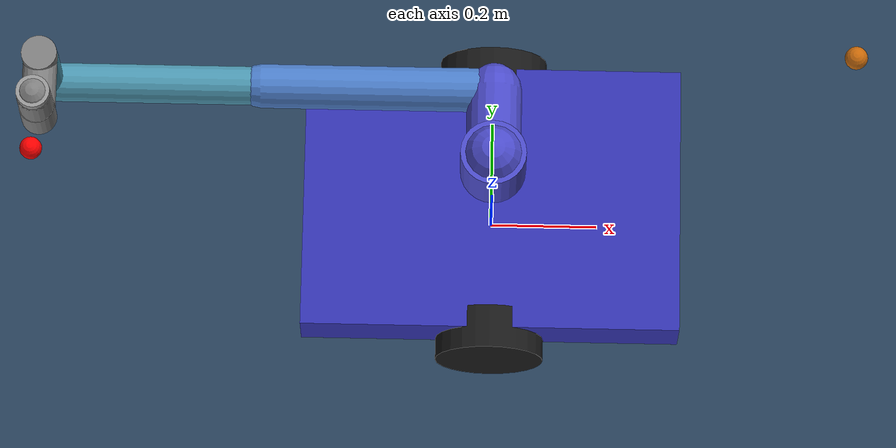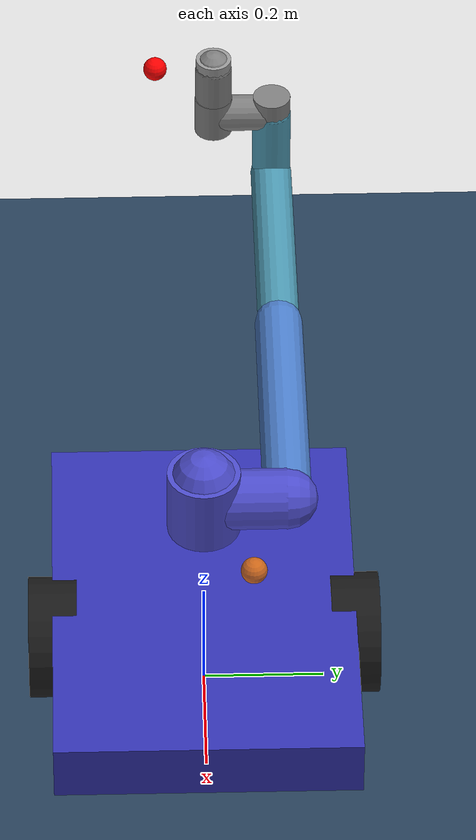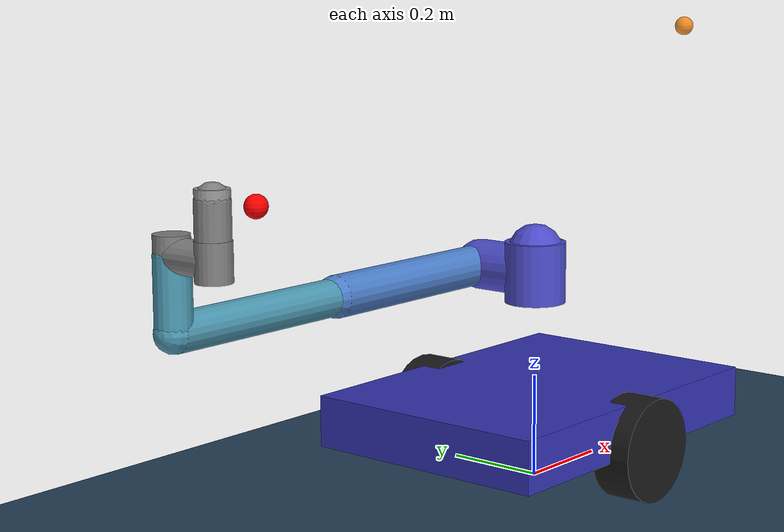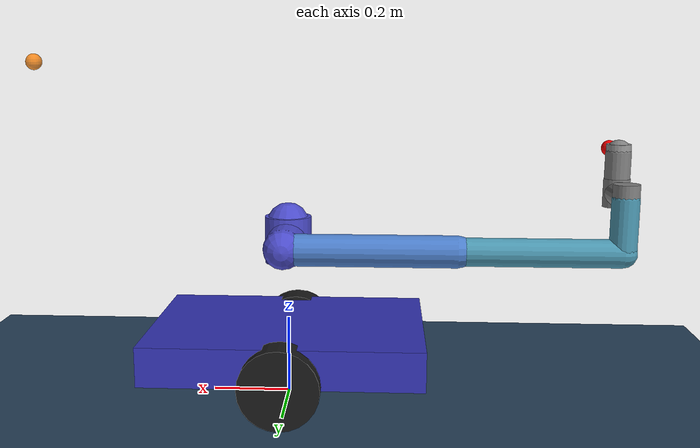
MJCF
<mujoco model="wheeled_ur5e_with_wheels">
  <compiler angle="radian" autolimits="true"/>

  <option timestep="0.002" integrator="implicitfast" gravity="0 0 -9.81"/>

  <visual>
    <headlight diffuse="0.6 0.6 0.6" ambient="0.3 0.3 0.3" specular="0 0 0"/>
    <rgba haze="0.15 0.25 0.35 1"/>
    <global azimuth="120" elevation="-20"/>
    <quality shadowsize="4096"/>
    <map force="0.1" zfar="30"/>
  </visual>

  <asset>
    <texture type="skybox" builtin="gradient" rgb1="0.3 0.5 0.7" rgb2="0 0 0"
             width="512" height="3072"/>
    <texture type="2d" name="groundplane" builtin="checker" mark="edge"
             rgb1="0.2 0.3 0.4" rgb2="0.1 0.2 0.3" markrgb="0.8 0.8 0.8"
             width="300" height="300"/>
    <material name="groundplane" texture="groundplane" texuniform="true"
              texrepeat="5 5" reflectance="0.2"/>
  </asset>

  <default>
    <joint limited="true"/>
    <geom contype="1" conaffinity="1" condim="3" solref="0.008 1"/>
    <motor ctrllimited="true"/>
  </default>

  <worldbody>

    <!-- Scene -->
    <light pos="0 0 3.5" dir="0 0 -1" directional="true"
           diffuse="0.4 0.4 0.4" specular="0.1 0.1 0.1"/>
    <light pos="1.5 1.5 2.5" dir="-1 -1 -1.5" diffuse="0.5 0.5 0.5"/>
    <geom name="floor" type="plane" size="0 0 0.05" pos="0 0 0"
          material="groundplane"/>

    <!-- Target marker -->
    <body name="target_body" mocap="true" pos="0.62 0.06 0.86">
      <site name="target_site" type="sphere" size="0.020" rgba="1 0.5 0 0.8"/>
    </body>

    <!-- Virtual mobile base (for positioning, will be constrained by wheel dynamics) -->
    <body name="base_x_body" pos="0 0 0">
      <inertial pos="0 0 0" mass="0.1" diaginertia="0.01 0.01 0.01"/>
      <joint name="base_x" type="slide" axis="1 0 0" range="-5.0 5.0" damping="0"/>

      <body name="base_y_body">
        <inertial pos="0 0 0" mass="0.1" diaginertia="0.01 0.01 0.01"/>
        <joint name="base_y" type="slide" axis="0 1 0" range="-5.0 5.0" damping="0"/>

        <body name="base_yaw_body">
          <inertial pos="0 0 0" mass="0.1" diaginertia="0.01 0.01 0.01"/>
          <joint name="base_yaw" type="hinge" axis="0 0 1" range="-6.2832 6.2832" damping="0"/>

          <body name="base_z_body" pos="0 0 0">
            <inertial pos="0 0 0" mass="0.1" diaginertia="0.01 0.01 0.01"/>
            <joint name="base_z" type="slide" axis="0 0 1" range="0.0 0.5" damping="0"/>

            <!-- Chassis at lift height -->
            <body name="chassis" pos="0 0 0.14">
              <inertial pos="0 0 0" mass="30.0" diaginertia="1.0 1.0 0.5"/>
              <geom type="box" size="0.35 0.25 0.05" pos="0 0 0" rgba="0.2 0.2 0.7 1"/>

              <!-- Left wheel -->
              <body name="left_wheel_body" pos="0 0.25 -0.04">
                <inertial pos="0 0 0" mass="2.0" diaginertia="0.01 0.01 0.01"/>
                <joint name="left_wheel_joint" type="hinge" axis="0 1 0"
                       range="-100 100" damping="0.1" armature="0.01"/>
                <geom type="cylinder" size="0.1 0.04" euler="1.5708 0 0"
                      rgba="0.1 0.1 0.1 1" friction="1.0 0.005 0.0001"/>
              </body>

              <!-- Right wheel -->
              <body name="right_wheel_body" pos="0 -0.25 -0.04">
                <inertial pos="0 0 0" mass="2.0" diaginertia="0.01 0.01 0.01"/>
                <joint name="right_wheel_joint" type="hinge" axis="0 1 0"
                       range="-100 100" damping="0.1" armature="0.01"/>
                <geom type="cylinder" size="0.1 0.04" euler="1.5708 0 0"
                      rgba="0.1 0.1 0.1 1" friction="1.0 0.005 0.0001"/>
              </body>

              <!-- UR5e arm mounted on chassis -->
              <body name="shoulder_link" pos="0 0 0.27">
                <inertial pos="0 0 0" mass="3.761" diaginertia="0.01 0.01 0.01"/>
                <joint name="shoulder_pan_joint" type="hinge" axis="0 0 1"
                       range="-6.2832 6.2832" damping="1.0" armature="0.1"/>
                <geom type="cylinder" size="0.06 0.06" rgba="0.3 0.3 0.8 1"/>
                <geom type="capsule" fromto="0 0 0 0 0 0.04" size="0.055" rgba="0.3 0.3 0.8 1"/>
                <geom type="capsule" fromto="0 0 0 0 0.1358 0" size="0.05" rgba="0.3 0.3 0.8 1"/>

                <body name="upper_arm_link" pos="0 0.1358 0">
                  <inertial pos="-0.2125 0 0" mass="8.058" diaginertia="0.2 0.2 0.01"/>
                  <joint name="shoulder_lift_joint" type="hinge" axis="0 1 0"
                         range="-6.2832 6.2832" damping="1.0" armature="0.1"/>
                  <geom type="capsule" fromto="0 0 0 -0.425 0 0" size="0.04" rgba="0.3 0.5 0.8 1"/>

                  <body name="forearm_link" pos="-0.425 0 0">
                    <inertial pos="-0.1961 0 0.067" mass="2.846" diaginertia="0.05 0.05 0.01"/>
                    <joint name="elbow_joint" type="hinge" axis="0 1 0"
                           range="-3.1416 3.1416" damping="0.5" armature="0.1"/>
                    <geom type="capsule" fromto="0 0 0 -0.3922 0 0" size="0.035" rgba="0.3 0.6 0.7 1"/>
                    <geom type="capsule" fromto="-0.3922 0 0 -0.3922 0 0.1333" size="0.033" rgba="0.3 0.6 0.7 1"/>

                    <body name="wrist_1_link" pos="-0.3922 0 0.1333">
                      <inertial pos="0 -0.05 0" mass="1.37" diaginertia="0.005 0.005 0.005"/>
                      <joint name="wrist_1_joint" type="hinge" axis="0 1 0"
                             range="-6.2832 6.2832" damping="0.1" armature="0.01"/>
                      <geom type="cylinder" size="0.032 0.035" rgba="0.5 0.5 0.5 1"/>
                      <geom type="capsule" fromto="0 0 0 0 -0.0997 0" size="0.031" rgba="0.5 0.5 0.5 1"/>

                      <body name="wrist_2_link" pos="0 -0.0997 0">
                        <inertial pos="0 0 0.05" mass="1.37" diaginertia="0.005 0.005 0.005"/>
                        <joint name="wrist_2_joint" type="hinge" axis="0 0 1"
                               range="-6.2832 6.2832" damping="0.1" armature="0.01"/>
                        <geom type="cylinder" size="0.032 0.035" rgba="0.5 0.5 0.5 1"/>
                        <geom type="capsule" fromto="0 0 0 0 0 0.0996" size="0.031" rgba="0.5 0.5 0.5 1"/>

                        <body name="wrist_3_link" pos="0 0 0.0996">
                          <inertial pos="0 -0.05 0" mass="0.195" diaginertia="0.001 0.001 0.001"/>
                          <joint name="wrist_3_joint" type="hinge" axis="0 1 0"
                                 range="-6.2832 6.2832" damping="0.1" armature="0.01"/>
                          <geom type="cylinder" size="0.03 0.02" rgba="0.6 0.6 0.6 1"/>
                          <site name="ee_site" pos="0 -0.0996 0" size="0.020" rgba="1 0 0 1" type="sphere"/>
                        </body>
                      </body>
                    </body>
                  </body>
                </body>
              </body>

            </body>
          </body>
        </body>
      </body>
    </body>

  </worldbody>

  <actuator>
    <!-- Virtual base actuators (will be removed/disabled in pure wheel control mode) -->
    <velocity name="act_base_x" joint="base_x" kv="100" ctrlrange="-1 1"/>
    <velocity name="act_base_y" joint="base_y" kv="100" ctrlrange="-1 1"/>
    <velocity name="act_base_z" joint="base_z" kv="100" ctrlrange="-0.5 0.5"/>
    <velocity name="act_base_yaw" joint="base_yaw" kv="50" ctrlrange="-3.14 3.14"/>

    <!-- Wheel motors (differential drive) -->
    <motor name="act_left_wheel" joint="left_wheel_joint" gear="50"
           ctrlrange="-10 10" ctrllimited="true"/>
    <motor name="act_right_wheel" joint="right_wheel_joint" gear="50"
           ctrlrange="-10 10" ctrllimited="true"/>

    <!-- Arm motors (torque control) -->
    <motor name="act_shoulder_pan" joint="shoulder_pan_joint" ctrlrange="-150 150" gear="1"/>
    <motor name="act_shoulder_lift" joint="shoulder_lift_joint" ctrlrange="-150 150" gear="1"/>
    <motor name="act_elbow" joint="elbow_joint" ctrlrange="-150 150" gear="1"/>
    <motor name="act_wrist_1" joint="wrist_1_joint" ctrlrange="-28 28" gear="1"/>
    <motor name="act_wrist_2" joint="wrist_2_joint" ctrlrange="-28 28" gear="1"/>
    <motor name="act_wrist_3" joint="wrist_3_joint" ctrlrange="-28 28" gear="1"/>
  </actuator>

</mujoco>
